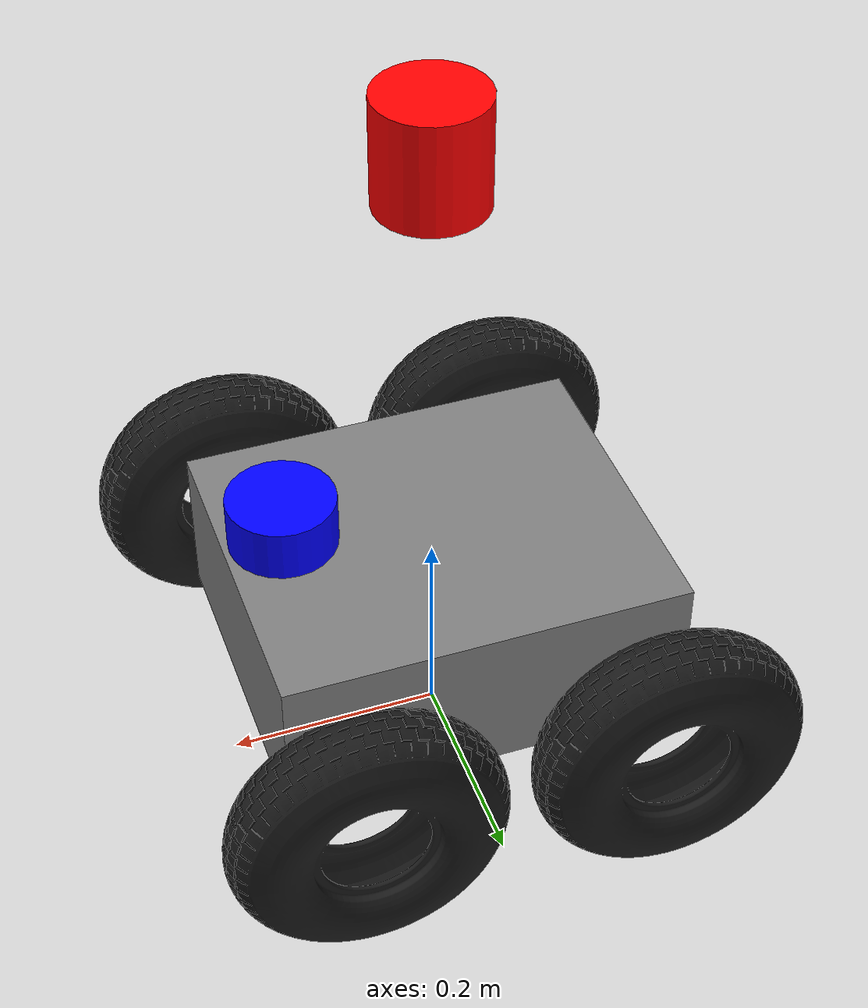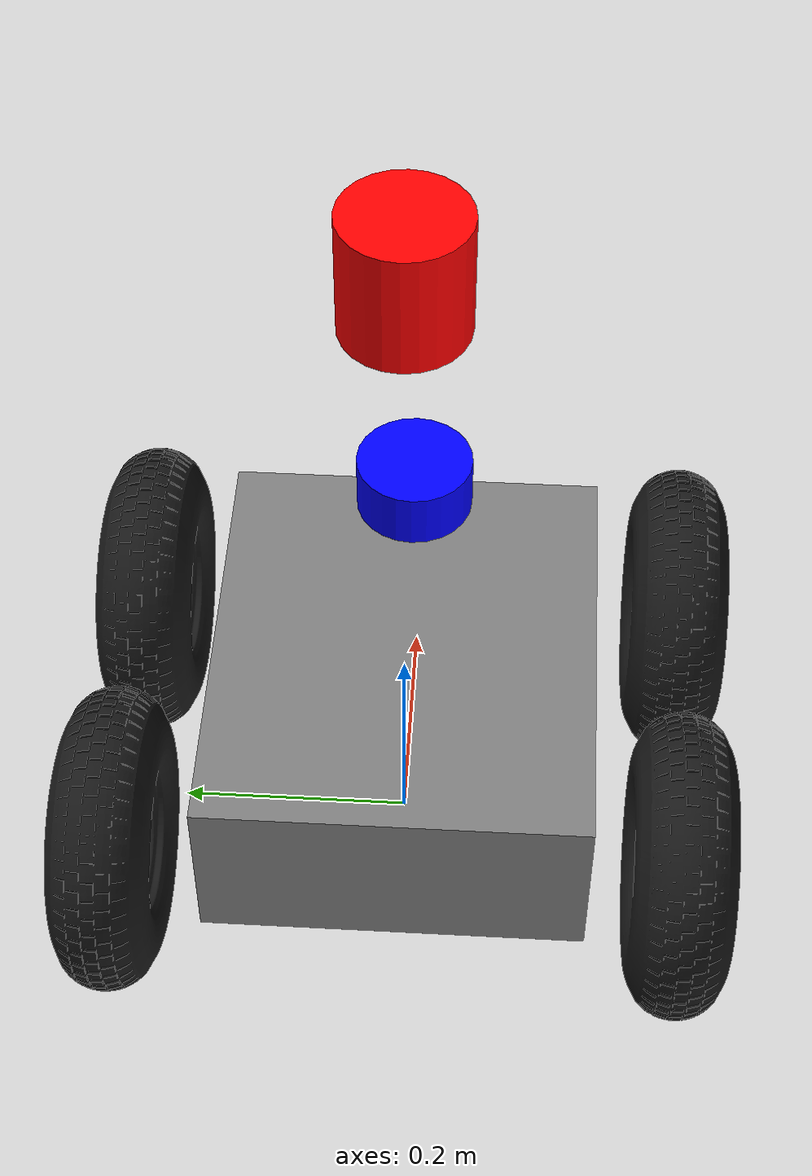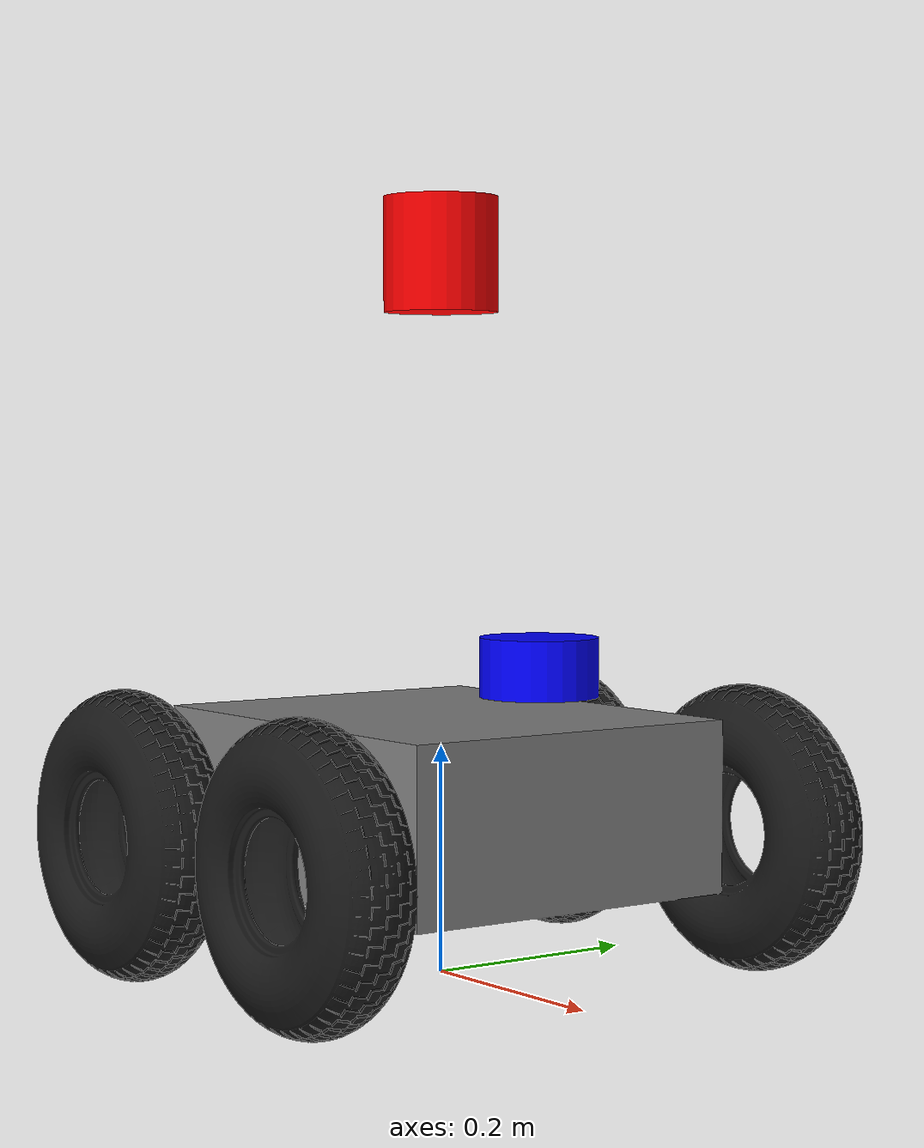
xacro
<?xml version="1.0"?>
<robot
  xmlns:xacro="http://ros.org/wiki/xacro"
  xmlns:controller="http://playerstage.sourceforge.net/gazebo/xmlschema/#controller"
  xmlns:interface="http://playerstage.sourceforge.net/gazebo/xmlschema/#interface"
  xmlns:sensor="http://playerstage.sourceforge.net/gazebo/xmlschema/#sensor"
  name="robot">

  <xacro:include filename="$(find mesh_navigation_tutorials_sim)/urdf/common.urdf.xacro" />
  <xacro:include filename="$(find mesh_navigation_tutorials_sim)/urdf/wheel.urdf.xacro" />

  <xacro:property name="M_PI" value="3.14159265359"/>

  <xacro:property name="imu_stdev" value="0.0001" />

  <xacro:property name="body_height" value="0.15"/>
  <xacro:property name="body_length" value="0.38"/>
  <xacro:property name="body_width" value="0.32"/>

  <xacro:property name="axis_front" value="0.14"/>
  <xacro:property name="axis_back" value="-0.14"/>

  <xacro:property name="wheel_thickness" value="0.08"/>
  <xacro:property name="wheel_body_offset" value="${wheel_thickness/2 + 0.035}"/>
  <xacro:property name="wheel_radius" value="0.125"/>
  <xacro:property name="axis_height" value="-0.03"/>
  <xacro:property name="axis_right" value="${-body_width/2 - wheel_body_offset}"/>
  <xacro:property name="axis_left" value="${body_width/2 + wheel_body_offset}"/>
  <xacro:property name="axis_length" value="${body_width + 2 * wheel_body_offset}" />
  <xacro:property name="turning_adaptation" value="2.95" />

  <xacro:property name="body_mass" value="25.0"/>
  <xacro:property name="wheel_mass" value="5.0"/>

  <xacro:property name="imu_width" value="0.036"/>
  <xacro:property name="imu_length" value="0.038"/>
  <xacro:property name="imu_height" value="0.012"/>

  <xacro:property name="imu_offset_x" value="0"/>
  <xacro:property name="imu_offset_y" value="0"/>
  <xacro:property name="imu_offset_z" value="${- body_height/2 + 0.005 + 0.007}"/>

  <xacro:property name="em_body_length" value="0.11"/>
  <xacro:property name="em_body_width" value="0.04"/>
  <xacro:property name="em_body_height" value="0.03"/>

  <xacro:property name="em_button_radius" value="0.0125"/>
  <xacro:property name="em_button_depth" value="0.02" />

  <link name="base_footprint"/>
  <link name="base_link">
    <visual>
      <origin xyz="0 0 0" rpy="0 0 0" />
      <geometry>
        <box size="${body_length} ${body_width} ${body_height}"/>
      </geometry>
      <material name="silver" >
        <color rgba="0.5 0.5 0.5 1" />
      </material>
    </visual>
    <collision>
      <origin xyz="0 0 0" rpy="0 0 0" />
      <geometry>
        <box size="${body_length} ${body_width} ${body_height}"/>
      </geometry>
    </collision>
    <xacro:box_inertial
      x="${body_length}"
      y="${body_width}"
      z="${body_height}"
      mass="${body_mass}"/>
  </link>

  <joint name="base_footprint_to_base_joint" type="fixed">
    <origin xyz="0 0 ${wheel_radius - axis_height}" rpy="0 0 0" />
    <parent link="base_footprint"/>
    <child link="base_link" />
  </joint>

  <xacro:wheel name="left_front_wheel" parent="base_link">
    <origin xyz="${axis_front} ${axis_left} ${axis_height}" rpy="0 0 0"/>
  </xacro:wheel>

  <xacro:wheel name="left_rear_wheel" parent="base_link">
    <origin xyz="${axis_back} ${axis_left} ${axis_height}" rpy="0 0 0" />
  </xacro:wheel>

  <xacro:wheel name="right_front_wheel" parent="base_link">
    <origin xyz="${axis_front} ${axis_right} ${axis_height}" rpy="0 0 0"/>
  </xacro:wheel>

  <xacro:wheel name="right_rear_wheel" parent="base_link">
    <origin xyz="${axis_back} ${axis_right} ${axis_height}" rpy="0 0 0" />
  </xacro:wheel>

  <link name="imu">
    <visual>
      <origin xyz="0 0 0" rpy="0 0 0" />
      <geometry>
        <box size="${imu_length} ${imu_width} ${imu_height}"/>
      </geometry>
      <material name="white" >
        <color rgba="0.8 0.8 0.8 1" />
      </material>
    </visual>
  </link>

  <joint name="imu_to_base_joint" type="fixed">
    <parent link="base_link" />
    <child link="imu" />
    <origin xyz="${imu_offset_x} ${imu_offset_y} ${imu_offset_z}" rpy="${M_PI} 0 ${M_PI/2.0}" />
  </joint>

  <link name="laser2d">
    <visual>
      <origin xyz="0 0 0" rpy="0 0 0" />
      <geometry>
        <cylinder radius="0.05" length="0.05"/>
      </geometry>
      <material name="blue" >
        <color rgba="0 0 1 1" />
      </material>
    </visual>
    <collision>
      <geometry>
        <cylinder radius="0.05" length="0.05"/>
      </geometry>
    </collision>
     <xacro:cylinder_inertial
      radius="0.05"
      length="0.05"
      mass="0.05"
      />
  </link>

  <joint name="laser2d_to_base_joint" type="fixed">
    <parent link="base_link" />
    <child link="laser2d" />
    <origin xyz="${body_length/2 - 0.05} 0 ${body_height/2 + 0.05}"/>
  </joint>

  <link name="laser3d">
    <visual>
      <origin xyz="0 0 0" rpy="0 0 0" />
      <geometry>
        <cylinder radius="0.05" length="0.1"/>
      </geometry>
      <material name="red" >
        <color rgba="1 0 0 1" />
      </material>
    </visual>
    <collision>
      <geometry>
        <cylinder radius="0.05" length="0.1"/>
      </geometry>
    </collision>
     <xacro:cylinder_inertial
      radius="0.05"
      length="0.1"
      mass="0.1"
      />
  </link>

  <joint name="laser3d_to_base_joint" type="fixed">
    <parent link="base_link" />
    <child link="laser3d" />
    <origin xyz="0 0 ${body_height/2 + 0.4}"/>
  </joint>

  <!-- Gazebo Plugins -->

  <gazebo reference="imu" >
    <sensor name="imu" type="imu">
      <always_on>1</always_on>
      <update_rate>100</update_rate>
      <visualize>false</visualize>
      <topic>/model/robot/imu</topic>
      <frame_id>imu</frame_id>
      <gz_frame_id>imu</gz_frame_id>
      <ign_frame_id>imu</ign_frame_id>
    </sensor>
  </gazebo>

  <gazebo reference="laser2d">
    <sensor name="laser2d" type='gpu_lidar'>"
      <pose relative_to='laser2d'>0 0 0 0 0 0</pose>
      <topic>/model/robot/scan</topic>
      <update_rate>10</update_rate>
      <ray>
        <scan>
          <horizontal>
              <samples>270</samples>
              <resolution>1</resolution>
              <min_angle>-2.356194</min_angle>
              <max_angle> 2.356194</max_angle>
          </horizontal>
          <vertical>
              <samples>1</samples>
              <resolution>0.01</resolution>
              <min_angle>0</min_angle>
              <max_angle>0</max_angle>
          </vertical>
        </scan>
        <range>
            <min>0.08</min>
            <max>15.0</max>
            <resolution>0.01</resolution>
        </range>
      </ray>
      <always_on>1</always_on>
      <visualize>true</visualize>
      <frame_id>laser2d</frame_id>
      <gz_frame_id>laser2d</gz_frame_id>
      <ign_frame_id>laser2d</ign_frame_id>
    </sensor>
  </gazebo>

  <gazebo reference="laser3d">
    <sensor name="laser3d" type='gpu_lidar'>"
      <pose relative_to='laser3d'>0 0 0 0 0 0</pose>
      <topic>/model/robot/cloud</topic>
      <update_rate>10</update_rate>
      <ray>
        <scan>
          <horizontal>
              <samples>128</samples>
              <resolution>0.01</resolution>
              <min_angle>${-M_PI}</min_angle>
              <max_angle>${M_PI}</max_angle>
          </horizontal>
          <vertical>
              <samples>32</samples>
              <resolution>0.01</resolution>
              <min_angle>${-M_PI / 16.0}</min_angle>
              <max_angle>${M_PI / 4.0}</max_angle>
          </vertical>
        </scan>
        <range>
            <min>0.2</min>
            <max>100.0</max>
            <resolution>0.01</resolution>
        </range>
      </ray>
      <always_on>1</always_on>
      <visualize>true</visualize>
      <frame_id>laser3d</frame_id>
      <gz_frame_id>laser3d</gz_frame_id>
      <ign_frame_id>laser3d</ign_frame_id>
    </sensor>
  </gazebo>

  <gazebo>
    <plugin
        filename="libignition-gazebo-diff-drive-system.so"
        name="ignition::gazebo::systems::DiffDrive">

      <num_wheel_pairs>2</num_wheel_pairs>
      <!-- wheels0 -->
      <left_joint>left_front_wheel</left_joint>
      <right_joint>right_front_wheel</right_joint>
      <wheel_separation>${axis_length}</wheel_separation>
      <wheel_radius>${wheel_radius}</wheel_radius>

      <!-- wheels1-->
      <left_joint>left_rear_wheel</left_joint>
      <right_joint>right_rear_wheel</right_joint>
      <wheel_separation>${axis_length}</wheel_separation>
      <wheel_radius>${wheel_radius}</wheel_radius>

      <odom_publish_frequency>50</odom_publish_frequency>
      <frame_id>odom</frame_id>
      <child_frame_id>base_footprint</child_frame_id>
      <tf_topic>/model/robot/tf_odom</tf_topic>
    </plugin>
  </gazebo>

  <gazebo>
    <plugin
      filename="libignition-gazebo-joint-state-publisher-system.so"
      name="ignition::gazebo::systems::JointStatePublisher">
      <joint_name>right_front_wheel</joint_name>
      <topic>/model/robot/joint_states</topic>
    </plugin>

    <plugin
      filename="libignition-gazebo-joint-state-publisher-system.so"
      name="ignition::gazebo::systems::JointStatePublisher">
      <joint_name>left_front_wheel</joint_name>
      <topic>/model/robot/joint_states</topic>
    </plugin>

    <plugin
      filename="libignition-gazebo-joint-state-publisher-system.so"
      name="ignition::gazebo::systems::JointStatePublisher">
      <joint_name>right_rear_wheel</joint_name>
      <topic>/model/robot/joint_states</topic>
    </plugin>

    <plugin
      filename="libignition-gazebo-joint-state-publisher-system.so"
      name="ignition::gazebo::systems::JointStatePublisher">
      <joint_name>left_rear_wheel</joint_name>
      <topic>/model/robot/joint_states</topic>
    </plugin>

  </gazebo>

  <gazebo>
    <plugin
      filename="ignition-gazebo-pose-publisher-system"
      name="gz::sim::systems::PosePublisher">
      <use_pose_vector_msg>true</use_pose_vector_msg>
      <publish_nested_model_pose>true</publish_nested_model_pose>
      <static_publisher>true</static_publisher>
    </plugin>
  </gazebo>

</robot>

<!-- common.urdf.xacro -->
<robot
  xmlns:xacro="http://ros.org/wiki/xacro">
  <xacro:property name="M_PI" value="3.1415926535897931" />

  <!-- see https://secure.wikimedia.org/wikipedia/en/wiki/List_of_moment_of_inertia_tensors -->

  <!-- #################### versions without origin #################### -->
  <xacro:macro name="sphere_inertial" params="radius mass">
    <inertial>
      <mass value="${mass}" />
      <origin xyz="0 0 0" />
      <inertia ixx="${0.4 * mass * radius * radius}" ixy="0.0" ixz="0.0"
        iyy="${0.4 * mass * radius * radius}" iyz="0.0"
        izz="${0.4 * mass * radius * radius}" />
    </inertial>
  </xacro:macro>

  <xacro:macro name="cylinder_inertial" params="radius length mass">
    <inertial>
      <mass value="${mass}" />
      <origin xyz="0 0 0" />
      <inertia ixx="${0.0833333 * mass * (3 * radius * radius + length * length)}" ixy="0.0" ixz="0.0"
        iyy="${0.0833333 * mass * (3 * radius * radius + length * length)}" iyz="0.0"
        izz="${0.5 * mass * radius * radius}" />
    </inertial>
  </xacro:macro>

  <xacro:macro name="box_inertial" params="x y z mass">
    <inertial>
      <mass value="${mass}" />
      <origin xyz="0 0 0" />
      <inertia ixx="${0.0833333 * mass * (y*y + z*z)}" ixy="0.0" ixz="0.0"
        iyy="${0.0833333 * mass * (x*x + z*z)}" iyz="0.0"
        izz="${0.0833333 * mass * (x*x + y*y)}" />
    </inertial>
  </xacro:macro>

  <!-- #################### versions with origin #################### -->
  <xacro:macro name="sphere_inertial_with_origin" params="radius mass *origin">
    <inertial>
      <mass value="${mass}" />
      <xacro:insert_block name="origin" />
      <inertia ixx="${0.4 * mass * radius * radius}" ixy="0.0" ixz="0.0"
        iyy="${0.4 * mass * radius * radius}" iyz="0.0"
        izz="${0.4 * mass * radius * radius}" />
    </inertial>
  </xacro:macro>

  <xacro:macro name="cylinder_inertial_with_origin" params="radius length mass *origin">
    <inertial>
      <mass value="${mass}" />
      <xacro:insert_block name="origin" />
      <inertia ixx="${0.0833333 * mass * (3 * radius * radius + length * length)}" ixy="0.0" ixz="0.0"
        iyy="${0.0833333 * mass * (3 * radius * radius + length * length)}" iyz="0.0"
        izz="${0.5 * mass * radius * radius}" />
    </inertial>
  </xacro:macro>

  <xacro:macro name="box_inertial_with_origin" params="x y z mass *origin">
    <inertial>
      <mass value="${mass}" />
      <xacro:insert_block name="origin" />
      <inertia ixx="${0.0833333 * mass * (y*y + z*z)}" ixy="0.0" ixz="0.0"
        iyy="${0.0833333 * mass * (x*x + z*z)}" iyz="0.0"
        izz="${0.0833333 * mass * (x*x + y*y)}" />
    </inertial>
  </xacro:macro>

</robot>

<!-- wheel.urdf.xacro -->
<robot xmlns:xacro="http://ros.org/wiki/xacro" name="wheel">
    <xacro:macro name="wheel" params="name parent *joint_pose">
        <link name="${name}_link">

            <visual>
                <origin xyz="0 0 0" rpy="0 0 ${M_PI/2}" />
                <geometry>
                    <mesh filename="package://mesh_navigation_tutorials_sim/meshes/wheel.stl"/>
                </geometry>
                <material name="wheelcolor" >
                    <color rgba="0.1 0.1 0.1 1" />
                </material>
            </visual>

            <collision>
                <origin xyz="0 0 0" rpy="${M_PI/2} 0 0" />
                <geometry>
                    <cylinder length="${wheel_thickness}" radius="${wheel_radius}"/>
                </geometry>
            </collision>

            <xacro:cylinder_inertial_with_origin radius="${wheel_radius}" length="${wheel_thickness}" mass="${wheel_mass}">
                <origin xyz="0 0 0" rpy="${M_PI/2} 0 0"/>
            </xacro:cylinder_inertial_with_origin>
        </link>

        <gazebo reference="${name}_link">
            <mu1 value="1.0"/>
            <mu2 value="1.0"/>
            <fdir1 value="1 0 0"/>
            <material>Gazebo/DarkGrey</material>
        </gazebo>

        <joint name="${name}" type="continuous">
            <parent link="${parent}"/>
            <child link="${name}_link"/>
            <xacro:insert_block name="joint_pose"/>
            <axis xyz="0 1 0" rpy="0 0 0" />
        </joint>

    </xacro:macro>
</robot>
